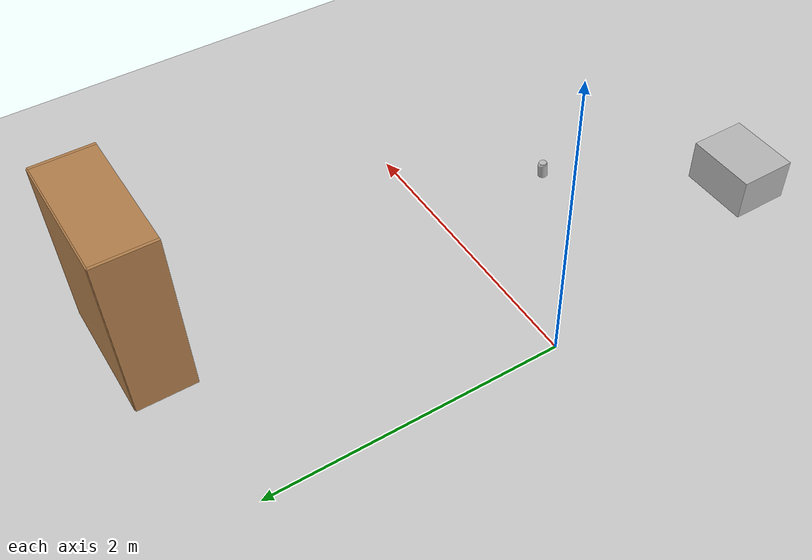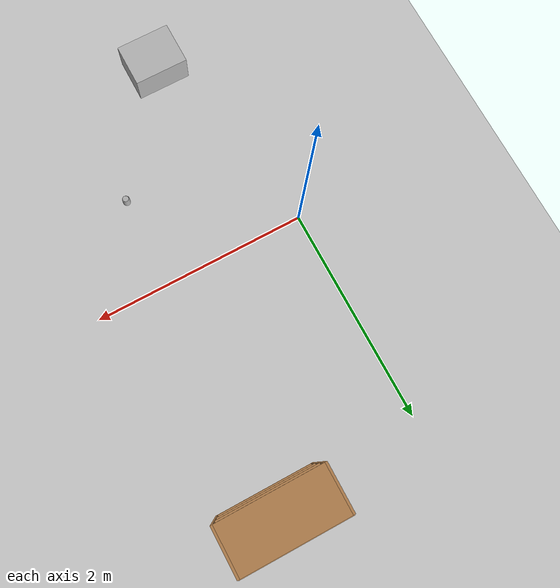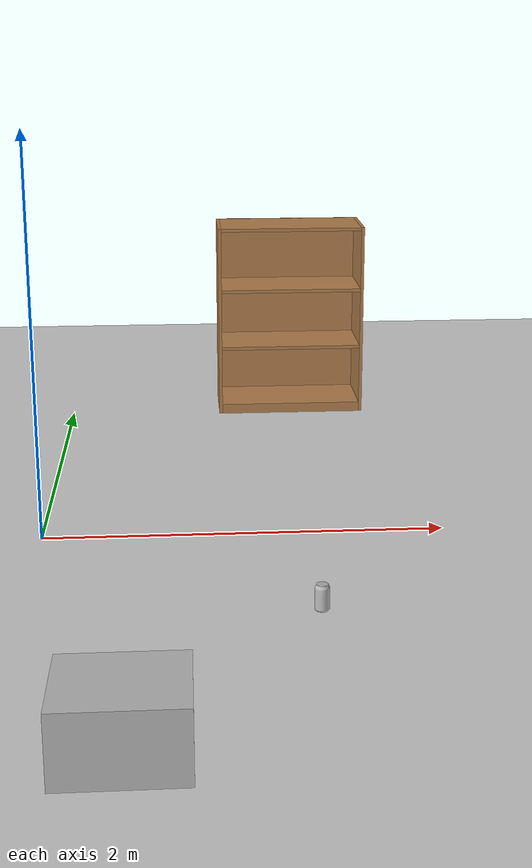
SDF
<sdf version="1.7">
 <world name="default">
  <light name="sun" type="directional">
   <pose>0 0 10 0 -0 0</pose>
   <diffuse>0.8 0.8 0.8 1</diffuse>
   <specular>0.2 0.2 0.2 1</specular>
   <attenuation>
    <range>1000</range>
    <constant>0.9</constant>
    <linear>0.01</linear>
    <quadratic>0.001</quadratic>
   </attenuation>
   <direction>-0.5 0.1 -0.9</direction>
   <spot><inner_angle>0</inner_angle><outer_angle>0</outer_angle><falloff>0</falloff></spot>
  </light>
  <model name="ground_plane">
   <static>1</static>
   <link name="link">
    <collision name="collision">
     <geometry><plane><normal>0 0 1</normal><size>100 100</size></plane></geometry>
     <surface>
      <contact><collide_bitmask>65535</collide_bitmask></contact>
      <friction><ode><mu>100</mu><mu2>50</mu2></ode></friction>
     </surface>
    </collision>
    <visual name="visual">
     <cast_shadows>0</cast_shadows>
     <geometry><plane><normal>0 0 1</normal><size>100 100</size></plane></geometry>
     <material>
      <script><uri>file://media/materials/scripts/gazebo.material</uri><name>Gazebo/Grey</name></script>
     </material>
    </visual>
   </link>
  </model>
  <gravity>0 0 -9.8</gravity>
  <magnetic_field>6e-06 2.3e-05 -4.2e-05</magnetic_field>
  <atmosphere type="adiabatic"/>
  <physics type="ode">
   <max_step_size>0.001</max_step_size>
   <real_time_factor>1</real_time_factor>
   <real_time_update_rate>1000</real_time_update_rate>
  </physics>
  <scene><ambient>0.4 0.4 0.4 1</ambient><background>0.7 0.7 0.7 1</background><shadows>1</shadows></scene>
  <audio><device>default</device></audio>
  <spherical_coordinates>
   <surface_model>EARTH_WGS84</surface_model>
   <latitude_deg>0</latitude_deg>
   <longitude_deg>0</longitude_deg>
   <elevation>0</elevation>
   <heading_deg>0</heading_deg>
  </spherical_coordinates>
  <model name="cardboard_box">
   <pose>0.485239 -1.92023 0.149 0 -0 0</pose>
   <link name="link">
    <inertial>
     <mass>2</mass>
     <inertia>
      <ixx>0.0416667</ixx>
      <ixy>0</ixy>
      <ixz>0</ixz>
      <iyy>0.0566667</iyy>
      <iyz>0</iyz>
      <izz>0.0683333</izz>
     </inertia>
    </inertial>
    <collision name="collision">
     <geometry><box><size>0.5 0.4 0.3</size></box></geometry>
     <surface>
      <friction><ode><mu>1</mu><mu2>1</mu2></ode></friction>
      <contact><ode><kp>1e+07</kp><kd>1</kd><min_depth>0.001</min_depth><max_vel>0.1</max_vel></ode></contact>
     </surface>
    </collision>
    <visual name="visual">
     <pose>0 0 -0.15 0 -0 0</pose>
     <geometry>
      <mesh><uri>model://cardboard_box/meshes/cardboard_box.dae</uri><scale>1.25932 1.00745 0.755591</scale></mesh>
     </geometry>
    </visual>
   </link>
  </model>
  <model name="coke_can">
   <link name="link">
    <inertial>
     <pose>0 0 0.06 0 -0 0</pose>
     <mass>0.39</mass>
     <inertia>
      <ixx>0.00055575</ixx>
      <ixy>0</ixy>
      <ixz>0</ixz>
      <iyy>0.00055575</iyy>
      <iyz>0</iyz>
      <izz>0.0001755</izz>
     </inertia>
    </inertial>
    <collision name="collision">
     <pose>0.003937 0.004724 -0.18 0 -0 0</pose>
     <geometry><mesh><uri>model://coke_can/meshes/coke_can.dae</uri></mesh></geometry>
     <surface>
      <friction><ode><mu>1</mu><mu2>1</mu2></ode></friction>
      <contact><ode><kp>1e+07</kp><kd>1</kd><min_depth>0.001</min_depth><max_vel>0.1</max_vel></ode></contact>
     </surface>
    </collision>
    <visual name="visual">
     <pose>0.003937 0.004724 -0.18 0 -0 0</pose>
     <geometry><mesh><uri>model://coke_can/meshes/coke_can.dae</uri></mesh></geometry>
    </visual>
   </link>
   <pose>1.30127 -0.858332 -0.002721 -0.058782 0.005198 -0.000522</pose>
  </model>
  <model name="bookshelf">
   <static>1</static>
   <link name="link">
    <inertial><mass>1</mass></inertial>
    <collision name="back">
     <pose>0 0.005 0.6 0 -0 0</pose>
     <geometry><box><size>0.9 0.01 1.2</size></box></geometry>
    </collision>
    <visual name="visual1">
     <pose>0 0.005 0.6 0 -0 0</pose>
     <geometry><box><size>0.9 0.01 1.2</size></box></geometry>
     <material>
      <script><uri>file://media/materials/scripts/gazebo.material</uri><name>Gazebo/Wood</name></script>
     </material>
    </visual>
    <collision name="left_side">
     <pose>0.45 -0.195 0.6 0 -0 0</pose>
     <geometry><box><size>0.02 0.4 1.2</size></box></geometry>
    </collision>
    <visual name="visual2">
     <pose>0.45 -0.195 0.6 0 -0 0</pose>
     <geometry><box><size>0.02 0.4 1.2</size></box></geometry>
     <material>
      <script><uri>file://media/materials/scripts/gazebo.material</uri><name>Gazebo/Wood</name></script>
     </material>
    </visual>
    <collision name="right_side">
     <pose>-0.45 -0.195 0.6 0 -0 0</pose>
     <geometry><box><size>0.02 0.4 1.2</size></box></geometry>
    </collision>
    <visual name="visual3">
     <pose>-0.45 -0.195 0.6 0 -0 0</pose>
     <geometry><box><size>0.02 0.4 1.2</size></box></geometry>
     <material>
      <script><uri>file://media/materials/scripts/gazebo.material</uri><name>Gazebo/Wood</name></script>
     </material>
    </visual>
    <collision name="bottom">
     <pose>0 -0.195 0.03 0 -0 0</pose>
     <geometry><box><size>0.88 0.4 0.06</size></box></geometry>
    </collision>
    <visual name="visual4">
     <pose>0 -0.195 0.03 0 -0 0</pose>
     <geometry><box><size>0.88 0.4 0.06</size></box></geometry>
     <material>
      <script><uri>file://media/materials/scripts/gazebo.material</uri><name>Gazebo/Wood</name></script>
     </material>
    </visual>
    <collision name="top">
     <pose>0 -0.195 1.19 0 -0 0</pose>
     <geometry><box><size>0.88 0.4 0.02</size></box></geometry>
    </collision>
    <visual name="visual5">
     <pose>0 -0.195 1.19 0 -0 0</pose>
     <geometry><box><size>0.88 0.4 0.02</size></box></geometry>
     <material>
      <script><uri>file://media/materials/scripts/gazebo.material</uri><name>Gazebo/Wood</name></script>
     </material>
    </visual>
    <collision name="low_shelf">
     <pose>0 -0.195 0.43 0 -0 0</pose>
     <geometry><box><size>0.88 0.4 0.02</size></box></geometry>
    </collision>
    <visual name="visual6">
     <pose>0 -0.195 0.43 0 -0 0</pose>
     <geometry><box><size>0.88 0.4 0.02</size></box></geometry>
     <material>
      <script><uri>file://media/materials/scripts/gazebo.material</uri><name>Gazebo/Wood</name></script>
     </material>
    </visual>
    <collision name="high_shelf">
     <pose>0 -0.195 0.8 0 -0 0</pose>
     <geometry><box><size>0.88 0.4 0.02</size></box></geometry>
    </collision>
    <visual name="visual7">
     <pose>0 -0.195 0.8 0 -0 0</pose>
     <geometry><box><size>0.88 0.4 0.02</size></box></geometry>
     <material>
      <script><uri>file://media/materials/scripts/gazebo.material</uri><name>Gazebo/Wood</name></script>
     </material>
    </visual>
   </link>
   <pose>1.39574 2.33255 0 0 -0 0</pose>
  </model>
 </world>
</sdf>
